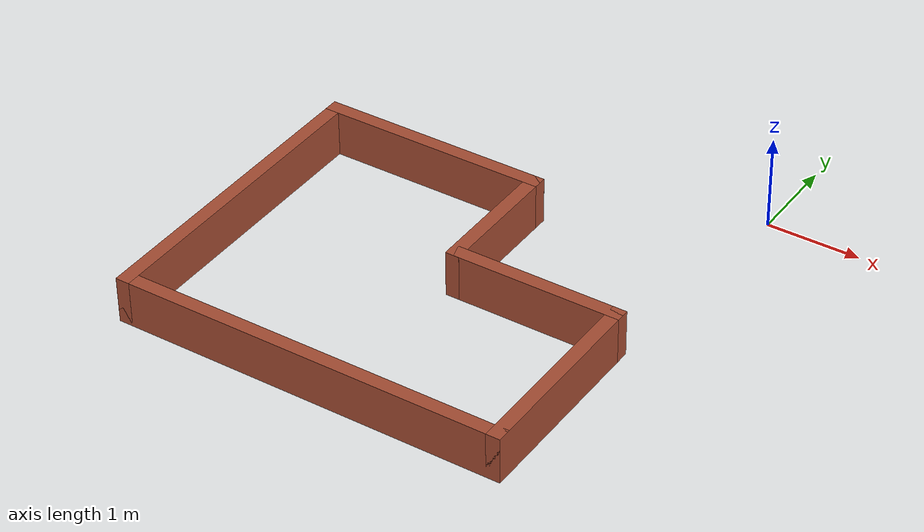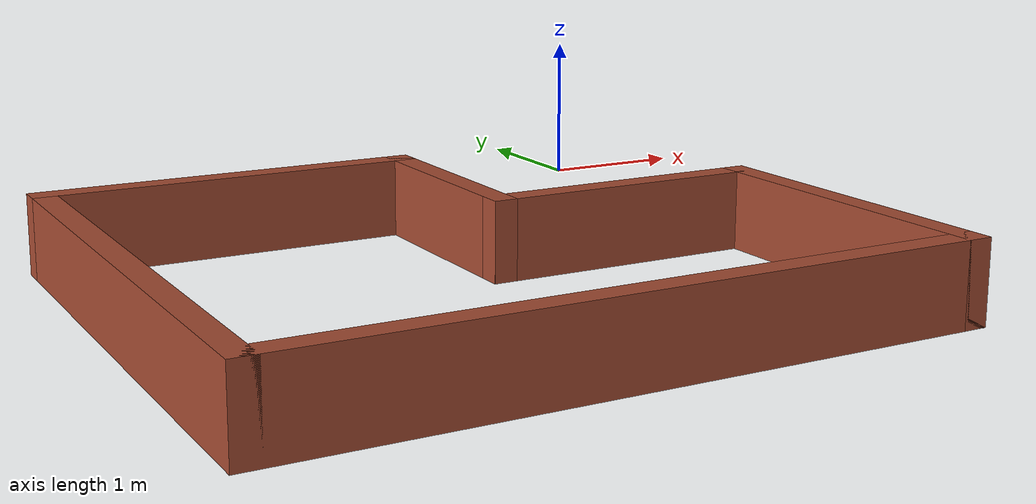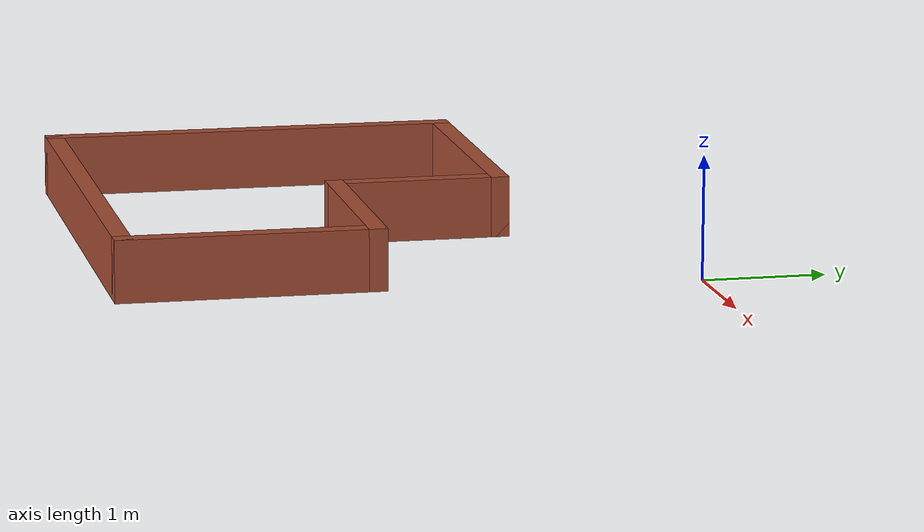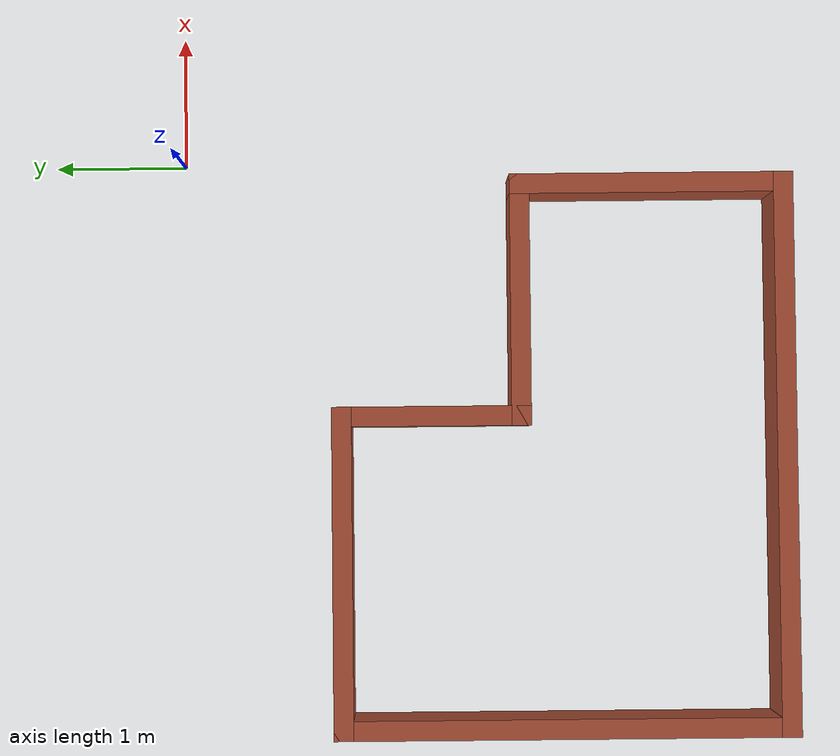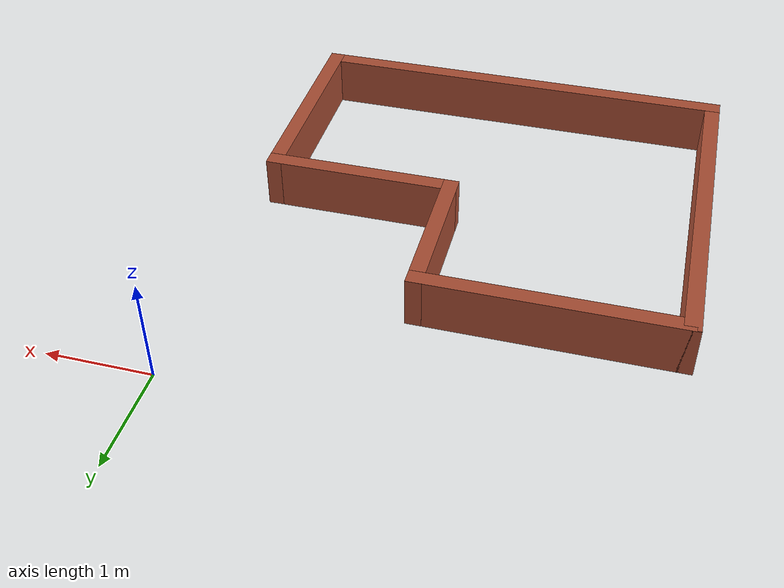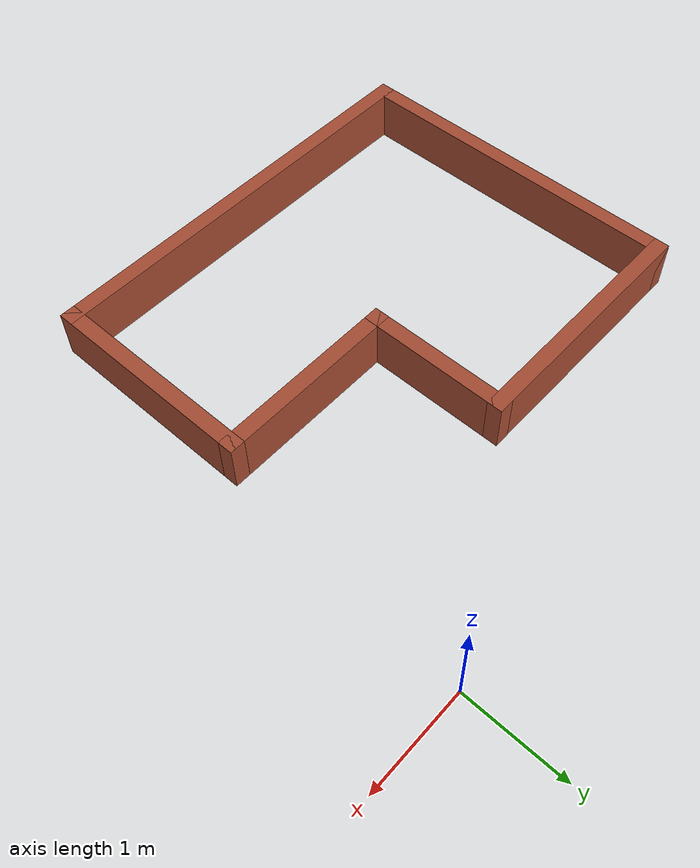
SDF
<?xml version='1.0'?>
<sdf version='1.6'>
  <model name='external1'>
    <pose frame=''>-2.26 -2.88477 0 0 -0 0</pose>
    <link name='Wall_10'>
      <collision name='Wall_10_Collision'>
        <geometry>
          <box>
            <size>2.5 0.15 0.5</size>
          </box>
        </geometry>
        <pose frame=''>0 0 0.25 0 -0 0</pose>
      </collision>
      <visual name='Wall_10_Visual'>
        <pose frame=''>0 0 0.25 0 -0 0</pose>
        <geometry>
          <box>
            <size>2.5 0.15 0.5</size>
          </box>
        </geometry>
        <material>
          <script>
            <uri>file://media/materials/scripts/gazebo.material</uri>
            <name>Gazebo/Bricks</name>
          </script>
          <ambient>1 1 1 1</ambient>
        </material>
      </visual>
      <pose frame=''>-0.875 1.67477 0 0 -0 0</pose>
    </link>
    <link name='Wall_12'>
      <collision name='Wall_12_Collision'>
        <geometry>
          <box>
            <size>3.5 0.15 0.5</size>
          </box>
        </geometry>
        <pose frame=''>0 0 0.25 0 -0 0</pose>
      </collision>
      <visual name='Wall_12_Visual'>
        <pose frame=''>0 0 0.25 0 -0 0</pose>
        <geometry>
          <box>
            <size>3.5 0.15 0.5</size>
          </box>
        </geometry>
        <material>
          <script>
            <uri>file://media/materials/scripts/gazebo.material</uri>
            <name>Gazebo/Bricks</name>
          </script>
          <ambient>1 1 1 1</ambient>
        </material>
      </visual>
      <pose frame=''>-2.05 -0.00023 0 0 0 -1.5708</pose>
    </link>
    <link name='Wall_20'>
      <collision name='Wall_20_Collision'>
        <geometry>
          <box>
            <size>4.25 0.15 0.5</size>
          </box>
        </geometry>
        <pose frame=''>0 0 0.25 0 -0 0</pose>
      </collision>
      <visual name='Wall_20_Visual'>
        <pose frame=''>0 0 0.25 0 -0 0</pose>
        <geometry>
          <box>
            <size>4.25 0.15 0.5</size>
          </box>
        </geometry>
        <material>
          <script>
            <uri>file://media/materials/scripts/gazebo.material</uri>
            <name>Gazebo/Bricks</name>
          </script>
          <ambient>1 1 1 1</ambient>
        </material>
      </visual>
      <pose frame=''>0 -1.67523 0 0 -0 0</pose>
    </link>
    <link name='Wall_21'>
      <collision name='Wall_21_Collision'>
        <geometry>
          <box>
            <size>2.144 0.15 0.5</size>
          </box>
        </geometry>
        <pose frame=''>0 0 0.25 0 -0 0</pose>
      </collision>
      <visual name='Wall_21_Visual'>
        <pose frame=''>0 0 0.25 0 -0 0</pose>
        <geometry>
          <box>
            <size>2.144 0.15 0.5</size>
          </box>
        </geometry>
        <material>
          <script>
            <uri>file://media/materials/scripts/gazebo.material</uri>
            <name>Gazebo/Bricks</name>
          </script>
          <ambient>1 1 1 1</ambient>
        </material>
      </visual>
      <pose frame=''>2.05 -0.67823 0 0 -0 1.5708</pose>
    </link>
    <link name='Wall_24'>
      <collision name='Wall_24_Collision'>
        <geometry>
          <box>
            <size>1.9 0.15 0.5</size>
          </box>
        </geometry>
        <pose frame=''>0 0 0.25 0 -0 0</pose>
      </collision>
      <visual name='Wall_24_Visual'>
        <pose frame=''>0 0 0.25 0 -0 0</pose>
        <geometry>
          <box>
            <size>1.9 0.15 0.5</size>
          </box>
        </geometry>
        <material>
          <script>
            <uri>file://media/materials/scripts/gazebo.material</uri>
            <name>Gazebo/Bricks</name>
          </script>
          <ambient>1 1 1 1</ambient>
        </material>
      </visual>
      <pose frame=''>1.175 0.31877 0 0 -0 3.14159</pose>
    </link>
    <link name='Wall_25'>
      <collision name='Wall_25_Collision'>
        <geometry>
          <box>
            <size>1.50692 0.15 0.5</size>
          </box>
        </geometry>
        <pose frame=''>0 0 0.25 0 -0 0</pose>
      </collision>
      <visual name='Wall_25_Visual'>
        <pose frame=''>0 0 0.25 0 -0 0</pose>
        <geometry>
          <box>
            <size>1.50692 0.15 0.5</size>
          </box>
        </geometry>
        <material>
          <script>
            <uri>file://media/materials/scripts/gazebo.material</uri>
            <name>Gazebo/Bricks</name>
          </script>
          <ambient>1 1 1 1</ambient>
        </material>
      </visual>
      <pose frame=''>0.3 0.99677 0 0 -0 1.5708</pose>
    </link>
    <static>1</static>
  </model>
</sdf>
